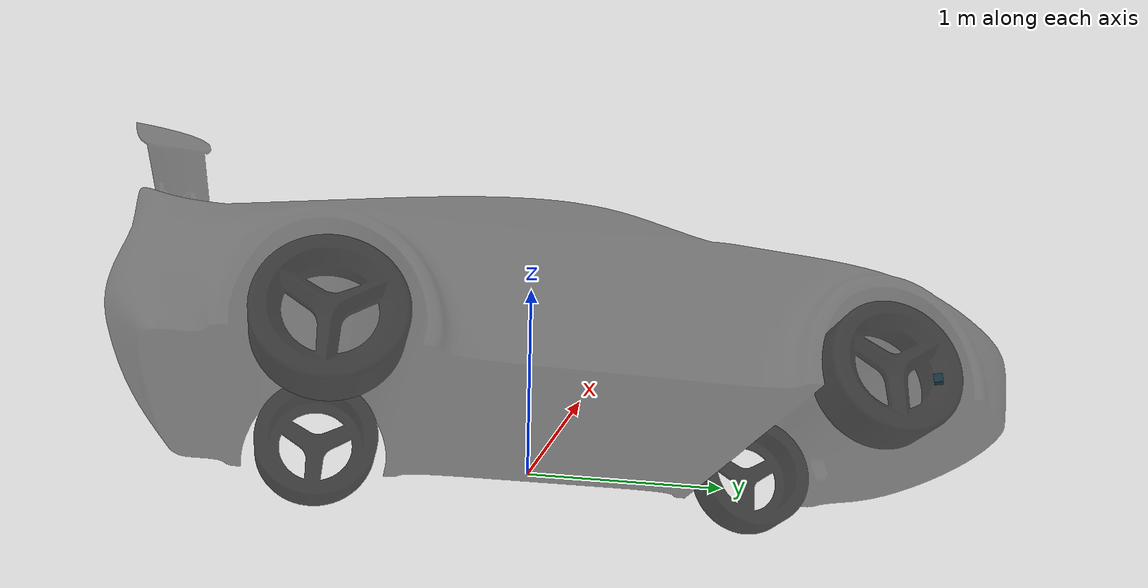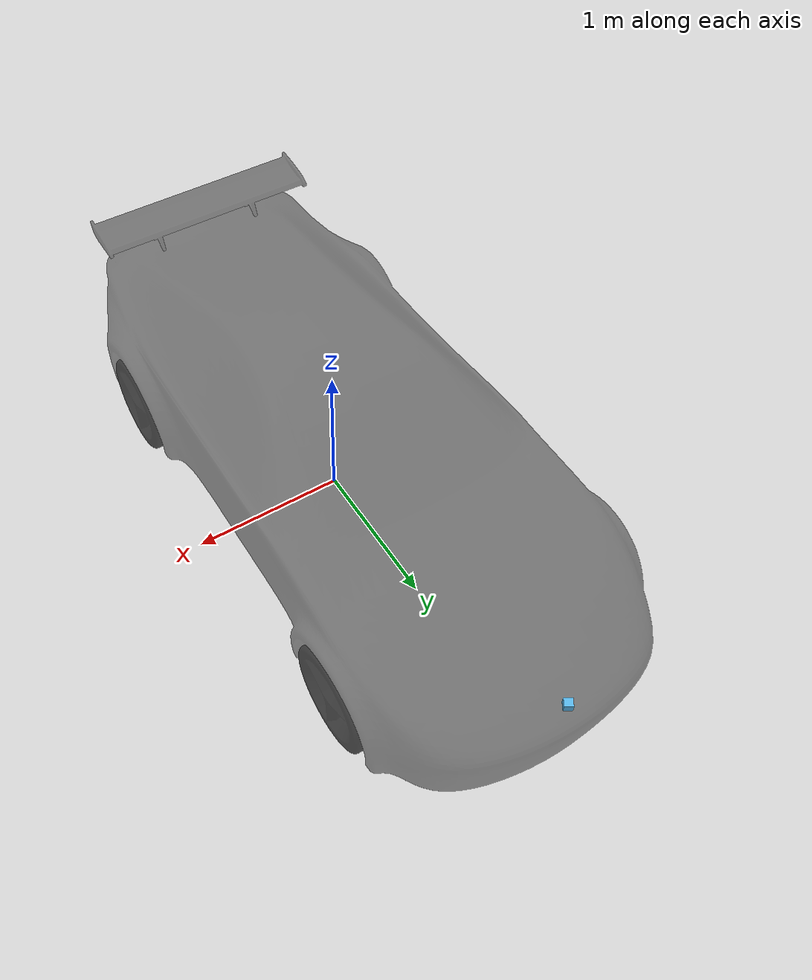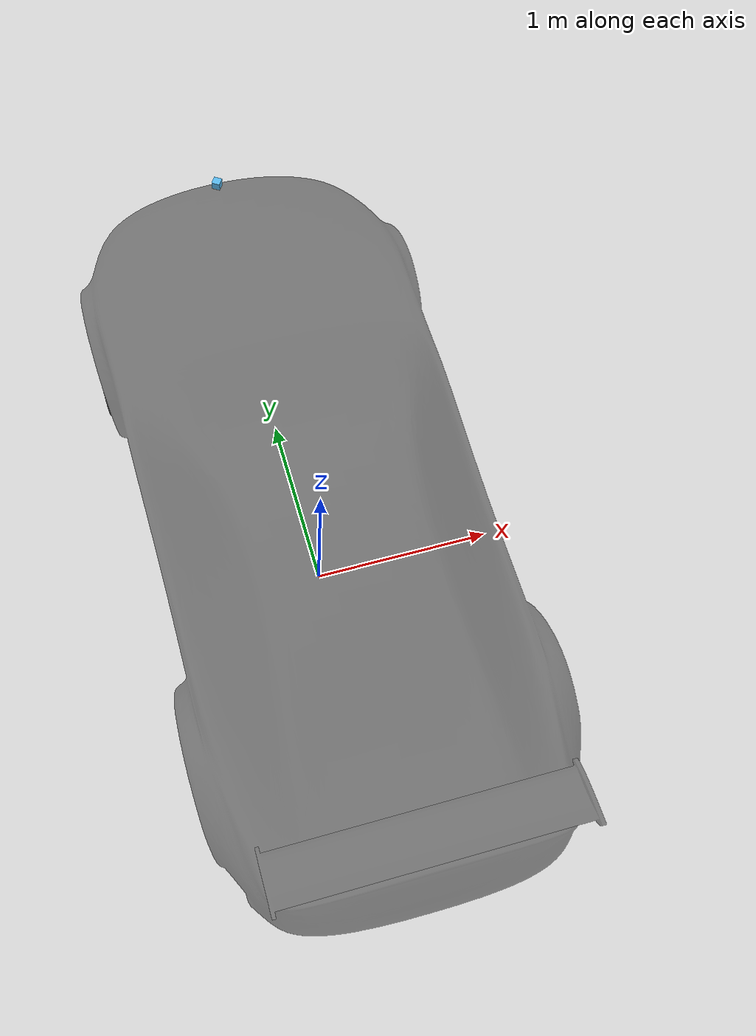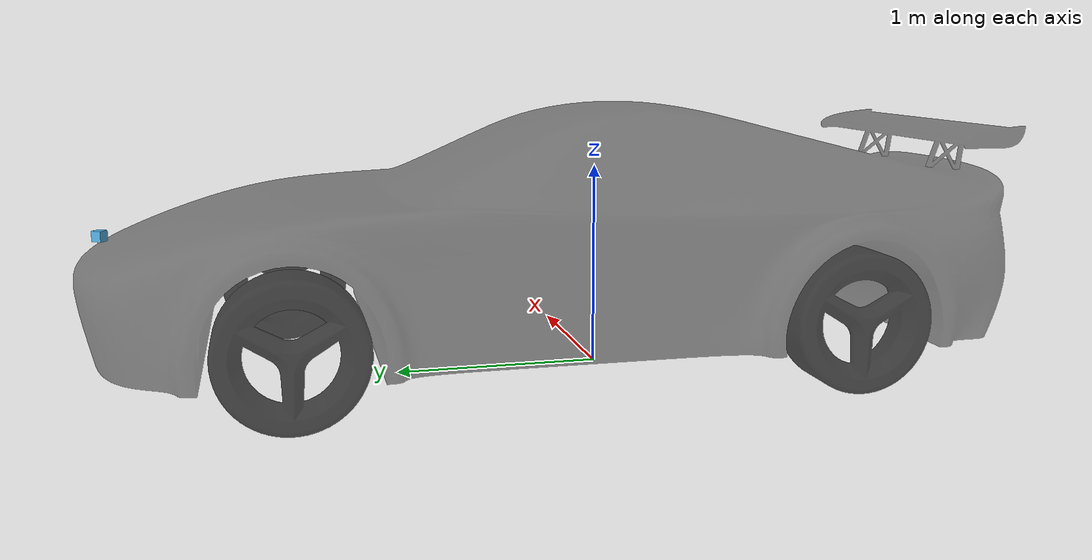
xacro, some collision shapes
<?xml version="1.0"?>
<robot name="autocar" xmlns:xacro="http://www.ros.org/wiki/xacro">

  <!-- RVIZ MATERIAL COLOUR -->
  <material name="silver">
    <color rgba="0.1 0.1 0.1 0.5" />
  </material>

  <material name="darkgrey">
    <color rgba="0 0 0 0.7" />
  </material>

  <!-- ROBOT DEFINITION -->
  <link name="base_link" />

  <joint name="chassis_link_joint" type="fixed">
    <origin xyz="0 0 0.4936" rpy="0 0 0" />
    <parent link="base_link" />
    <child link="chassis_link" />
  </joint>

  <joint name="hokuyo_joint" type="fixed">
    <axis xyz="0 1 0" />
    <origin xyz="0 2.34 0.24" rpy="0 0 1.5708" />
    <parent link="chassis_link" />
    <child link="hokuyo_link" />
  </joint>

  <link name="hokuyo_link">
    <collision>
      <origin xyz="0 0 0" rpy="0 0 1.0" />
      <geometry>
        <box size="0.05 0.05 0.05" />
      </geometry>
    </collision>

    <visual>
      <origin xyz="0 0 0" rpy="0 0 0" />
      <geometry>
        <mesh filename="package://autocar_description/meshes/hokuyo.dae" />
      </geometry>
    </visual>

    <inertial>
      <mass value="1e-5" />
      <origin xyz="0 0 0" rpy="0 0 0" />
      <inertia ixx="1e-6" ixy="0" ixz="0" iyy="1e-6" iyz="0" izz="1e-6" />
    </inertial>
  </link>

  <link name="chassis_link">
    <inertial>
      <origin rpy="0 0 0" xyz="1.04282e-06 0.07307 0.1816" />
      <mass value="1580" />
      <inertia ixx="1997.8579" ixy="-3e-05" ixz="-1e-06" iyy="442.7692" iyz="62.5206" izz="2238.0524" />
    </inertial>
    <visual>
      <origin rpy="0 0 0" xyz="0 0 0" />
      <geometry>
        <mesh filename="package://autocar_description/meshes/chassis_link.stl" scale="0.001 0.001 0.001" />
      </geometry>
      <material name="silver" />
    </visual>
    <collision>
      <origin rpy="0 0 0" xyz="0 0 0" />
      <geometry>
        <mesh filename="package://autocar_description/meshes/chassis_link.stl" scale="0.001 0.001 0.001" />
      </geometry>
    </collision>
  </link>

  <joint name="spoiler_joint" type="fixed">
    <origin xyz="0 0.05 -0.05" rpy="1.5708 0 3.14159" />
    <parent link="chassis_link" />
    <child link="spoiler_link" />
  </joint>

  <link name="spoiler_link">
    <visual>
      <origin rpy="0 0 0" xyz="0 0 0" />
      <geometry>
        <mesh filename="package://autocar_description/meshes/spoiler.stl" scale="0.001 0.001 0.001" />
      </geometry>
      <material name="silver" />
    </visual>
    <collision>
      <origin rpy="0 0 0" xyz="0 0 0" />
      <geometry>
        <mesh filename="package://autocar_description/meshes/spoiler.stl" scale="0.001 0.001 0.001" />
      </geometry>
    </collision>
  </link>

  <link name="br_1">
    <inertial>
      <origin rpy="0 0 0" xyz="-0.0377 1.5929e-07 -1.5929e-07" />
      <mass value="24.5" />
      <inertia ixx="1.845139" ixy="-0.0" ixz="-0.0" iyy="1.049606" iyz="0.0" izz="1.049606" />
    </inertial>
    <visual>
      <origin rpy="0 0 0" xyz="-0.8750 1.0136 0.1444" />
      <geometry>
        <mesh filename="package://autocar_description/meshes/br_1.stl" scale="0.001 0.001 0.001" />
      </geometry>
      <material name="darkgrey" />
    </visual>
    <collision>
      <origin rpy="0 0 0" xyz="-0.8750 1.0136 0.1444" />
      <geometry>
        <mesh filename="package://autocar_description/meshes/br_1.stl" scale="0.001 0.001 0.001" />
      </geometry>
    </collision>
  </link>

  <link name="bl_1">
    <inertial>
      <origin rpy="0 0 0" xyz="-0.0377 1.5929e-07 -1.5929e-07" />
      <mass value="24.5" />
      <inertia ixx="1.845139" ixy="-0.0" ixz="-0.0" iyy="1.049606" iyz="0.0" izz="1.049606" />
    </inertial>
    <visual>
      <origin rpy="0 0 0" xyz="0.8750 1.0136 0.1444" />
      <geometry>
        <mesh filename="package://autocar_description/meshes/bl_1.stl" scale="0.001 0.001 0.001" />
      </geometry>
      <material name="darkgrey" />
    </visual>
    <collision>
      <origin rpy="0 0 0" xyz="0.8750 1.0136 0.1444" />
      <geometry>
        <mesh filename="package://autocar_description/meshes/bl_1.stl" scale="0.001 0.001 0.001" />
      </geometry>
    </collision>
  </link>

  <link name="fr_1">
    <inertial>
      <origin rpy="0 0 0" xyz="-0.0377 1.5929e-07 -1.5929e-07" />
      <mass value="24.5" />
      <inertia ixx="1.845139" ixy="-0.0" ixz="-0.0" iyy="1.049606" iyz="0.0" izz="1.049606" />
    </inertial>
    <visual>
      <origin rpy="0 0 0" xyz="-0.8750 -1.5174 0.1444" />
      <geometry>
        <mesh filename="package://autocar_description/meshes/fr_1.stl" scale="0.001 0.001 0.001" />
      </geometry>
      <material name="darkgrey" />
    </visual>
    <collision>
      <origin rpy="0 0 0" xyz="-0.8750 -1.5174 0.1444" />
      <geometry>
        <mesh filename="package://autocar_description/meshes/fr_1.stl" scale="0.001 0.001 0.001" />
      </geometry>
    </collision>
  </link>

  <link name="fl_1">
    <inertial>
      <origin rpy="0 0 0" xyz="-0.0377 1.5929e-07 -1.5929e-07" />
      <mass value="24.5" />
      <inertia ixx="1.845139" ixy="-0.0" ixz="-0.0" iyy="1.049606" iyz="0.0" izz="1.049606" />
    </inertial>
    <visual>
      <origin rpy="0 0 0" xyz="0.8750 -1.5174 0.1444" />
      <geometry>
        <mesh filename="package://autocar_description/meshes/fl_1.stl" scale="0.001 0.001 0.001" />
      </geometry>
      <material name="darkgrey" />
    </visual>
    <collision>
      <origin rpy="0 0 0" xyz="0.8750 -1.5174 0.1444" />
      <geometry>
        <mesh filename="package://autocar_description/meshes/fl_1.stl" scale="0.001 0.001 0.001" />
      </geometry>
    </collision>
  </link>

  <link name="r_steer_1">
    <inertial>
      <origin rpy="0 0 0" xyz="0.003381 1.5929e-07 0.02162" />
      <mass value="1" />
      <inertia ixx="1.0" ixy="0.0" ixz="0.0" iyy="1.0" iyz="0.0" izz="1.0" />
    </inertial>
  </link>

  <link name="l_steer_1">
    <inertial>
      <origin rpy="0 0 0" xyz="0.003381 1.5929e-07 0.02162" />
      <mass value="1" />
      <inertia ixx="1.0" ixy="0.0" ixz="0.0" iyy="1.0" iyz="0.0" izz="1.0" />
    </inertial>
  </link>

  <joint name="br_axle" type="continuous">
    <origin rpy="0 0 0" xyz="0.8750 -1.013637 -0.144363" />
    <parent link="chassis_link" />
    <child link="br_1" />
    <axis xyz="-1.0 0.0 0.0" />
  </joint>

  <joint name="bl_axle" type="continuous">
    <origin rpy="0 0 0" xyz="-0.8750 -1.013637 -0.144363" />
    <parent link="chassis_link" />
    <child link="bl_1" />
    <axis xyz="-1.0 0.0 0.0" />
  </joint>

  <joint name="fr_axle" type="continuous">
    <origin rpy="0 0 0" xyz="0.05 0.0 0.0" />
    <parent link="r_steer_1" />
    <child link="fr_1" />
    <axis xyz="-1.0 0.0 0.0" />
  </joint>

  <joint name="fl_axle" type="continuous">
    <origin rpy="0 0 0" xyz="-0.05 0.0 0.0" />
    <parent link="l_steer_1" />
    <child link="fl_1" />
    <axis xyz="-1.0 0.0 0.0" />
  </joint>

  <joint name="r_steer" type="revolute">
    <origin rpy="0 0 0" xyz="0.8250 1.517363 -0.144363" />
    <parent link="chassis_link" />
    <child link="r_steer_1" />
    <axis xyz="0.0 0.0 1.0" />
    <dynamics damping="0.01" friction="0.01" />
    <limit effort="1000.0" lower="-0.95" upper="0.95" velocity="100" />
  </joint>

  <joint name="l_steer" type="revolute">
    <origin rpy="0 0 0" xyz="-0.8250 1.517363 -0.144363" />
    <parent link="chassis_link" />
    <child link="l_steer_1" />
    <axis xyz="0.0 0.0 1.0" />
    <dynamics damping="0.01" friction="0.01" />
    <limit effort="1000.0" lower="-0.95" upper="0.95" velocity="100" />
  </joint>

  <gazebo reference="chassis_link">
    <material>Gazebo/White</material>
    <mu1>0.2</mu1>
    <mu2>0.2</mu2>
    <selfCollide>true</selfCollide>
    <gravity>true</gravity>
  </gazebo>

  <gazebo reference="spoiler_link">
    <material>Gazebo/DarkGrey</material>
    <mu1>0.2</mu1>
    <mu2>0.2</mu2>
    <selfCollide>true</selfCollide>
    <gravity>true</gravity>
  </gazebo>

  <gazebo reference="br_1">
    <material>Gazebo/DarkGrey</material>
    <mu1>1.7</mu1>
    <mu2>1.7</mu2>
    <selfCollide>true</selfCollide>
  </gazebo>

  <gazebo reference="bl_1">
    <material>Gazebo/DarkGrey</material>
    <mu1>1.7</mu1>
    <mu2>1.7</mu2>
    <selfCollide>true</selfCollide>
  </gazebo>

  <gazebo reference="fr_1">
    <material>Gazebo/DarkGrey</material>
    <mu1>1.7</mu1>
    <mu2>1.7</mu2>
    <selfCollide>true</selfCollide>
  </gazebo>

  <gazebo reference="fl_1">
    <material>Gazebo/DarkGrey</material>
    <mu1>1.1</mu1>
    <mu2>1.1</mu2>
    <selfCollide>true</selfCollide>
  </gazebo>

  <gazebo reference="r_steer_1">
    <material>Gazebo/DarkGrey</material>
    <mu1>0.2</mu1>
    <mu2>0.2</mu2>
    <selfCollide>true</selfCollide>
  </gazebo>

  <gazebo reference="l_steer_1">
    <material>Gazebo/DarkGrey</material>
    <mu1>0.2</mu1>
    <mu2>0.2</mu2>
    <selfCollide>true</selfCollide>
  </gazebo>

</robot>
